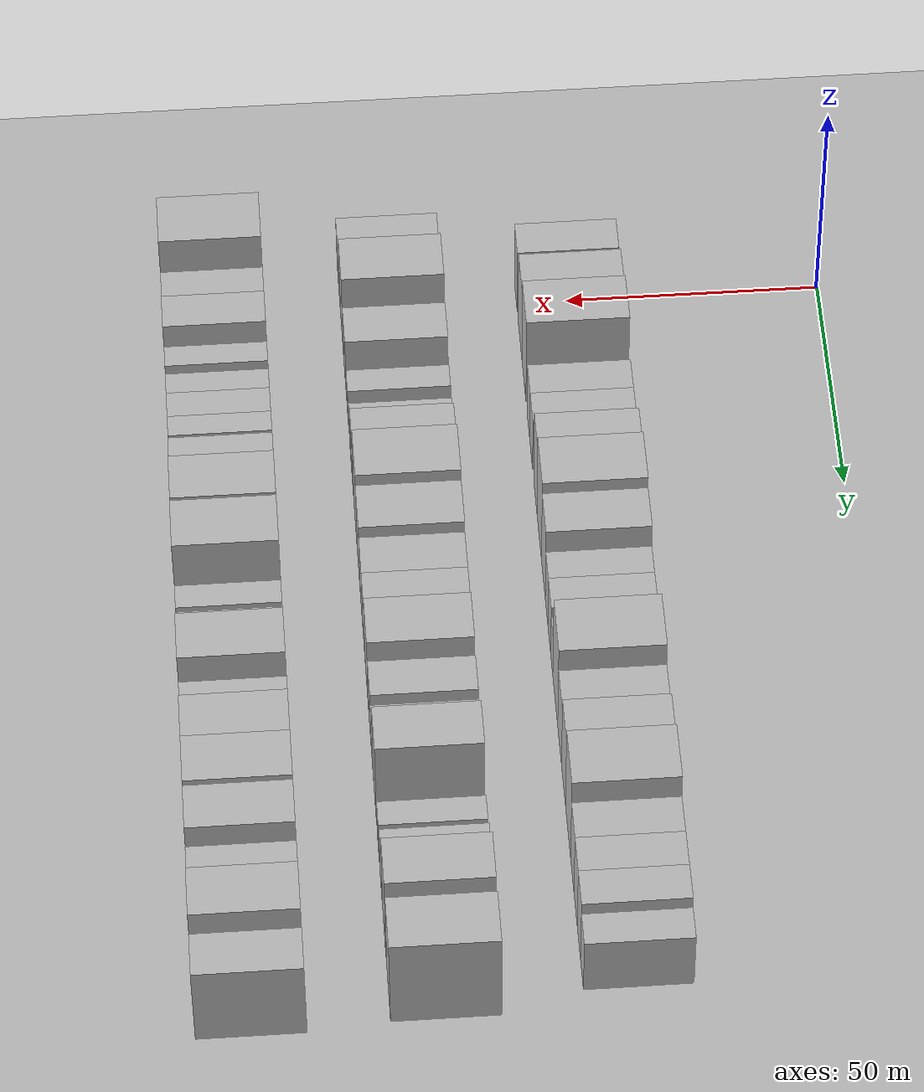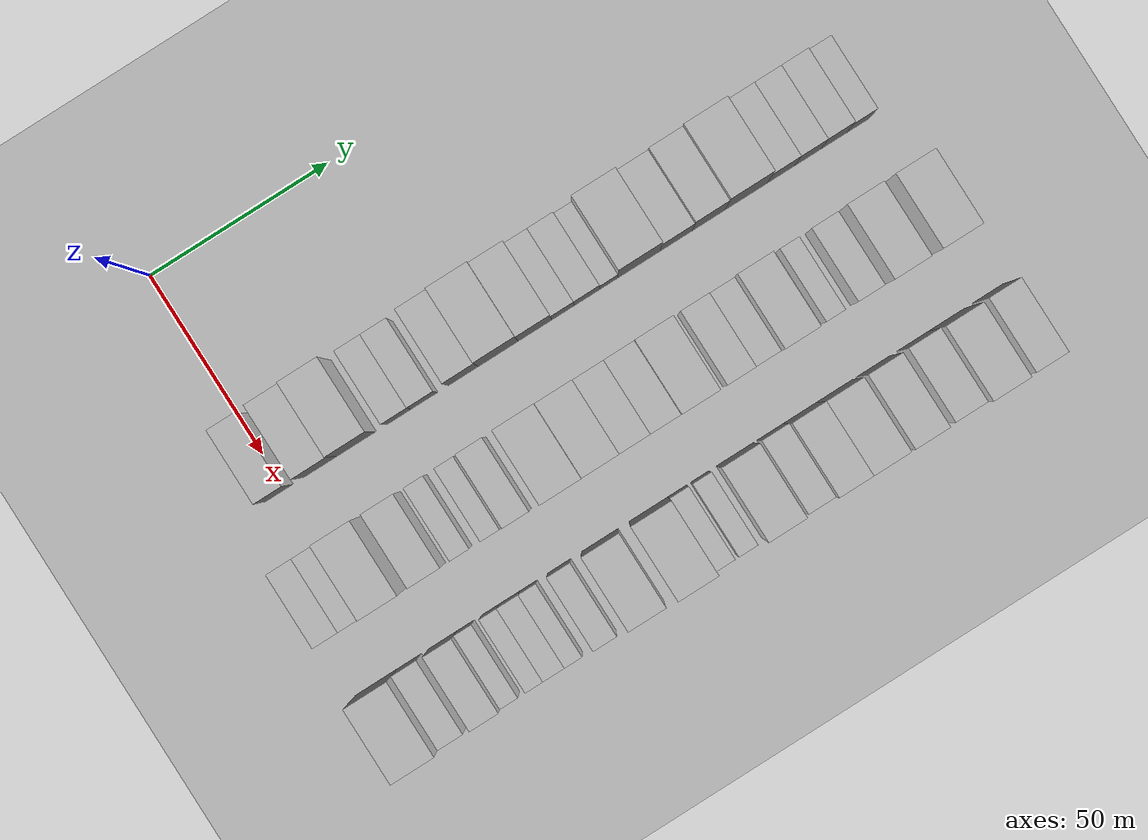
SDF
<sdf version="1.6">
 <world name="default">
  <include><name>ground_plane_1</name><uri>model://HANNAS_ground_plane</uri></include>
  <include>
   <name>ground_plane_2</name>
   <uri>model://HANNAS_ground_plane</uri>
   <pose>100 0 0  0 0 0</pose>
  </include>
  <model name="building_39">
   <static>1</static>
   <pose>50.0000 -1.3939 0 0.000000 0.000000 0.000000</pose>
   <link name="link">
    <pose>0 0 9.00 0 0 0</pose>
    <collision name="collision"><geometry><box><size>20.0000 7.6644 18.0000</size></box></geometry></collision>
    <visual name="visual">
     <cast_shadows>0</cast_shadows>
     <geometry><box><size>20.0000 7.6644 18.0000</size></box></geometry>
     <material>
      <script>
       <uri>model://HANNAS_wall/materials/scripts</uri>
       <uri>model://HANNAS_wall/materials/textures</uri>
       <name>vrc/HANNAS_wall</name>
      </script>
     </material>
    </visual>
   </link>
  </model>
  <model name="building_40">
   <static>1</static>
   <pose>50.0000 10.1830 0 0.000000 0.000000 0.000000</pose>
   <link name="link">
    <pose>0 0 10.50 0 0 0</pose>
    <collision name="collision"><geometry><box><size>20.0000 9.4892 21.0000</size></box></geometry></collision>
    <visual name="visual">
     <cast_shadows>0</cast_shadows>
     <geometry><box><size>20.0000 9.4892 21.0000</size></box></geometry>
     <material>
      <script>
       <uri>model://HANNAS_wall/materials/scripts</uri>
       <uri>model://HANNAS_wall/materials/textures</uri>
       <name>vrc/HANNAS_wall</name>
      </script>
     </material>
    </visual>
   </link>
  </model>
  <model name="building_41">
   <static>1</static>
   <pose>50.0000 20.3024 0 0.000000 0.000000 0.000000</pose>
   <link name="link">
    <pose>0 0 12.00 0 0 0</pose>
    <collision name="collision"><geometry><box><size>20.0000 10.7497 24.0000</size></box></geometry></collision>
    <visual name="visual">
     <cast_shadows>0</cast_shadows>
     <geometry><box><size>20.0000 10.7497 24.0000</size></box></geometry>
     <material>
      <script>
       <uri>model://HANNAS_wall/materials/scripts</uri>
       <uri>model://HANNAS_wall/materials/textures</uri>
       <name>vrc/HANNAS_wall</name>
      </script>
     </material>
    </visual>
   </link>
  </model>
  <model name="building_42">
   <static>1</static>
   <pose>50.0000 32.2145 0 0.000000 0.000000 0.000000</pose>
   <link name="link">
    <pose>0 0 7.50 0 0 0</pose>
    <collision name="collision"><geometry><box><size>20.0000 7.0744 15.0000</size></box></geometry></collision>
    <visual name="visual">
     <cast_shadows>0</cast_shadows>
     <geometry><box><size>20.0000 7.0744 15.0000</size></box></geometry>
     <material>
      <script>
       <uri>model://HANNAS_wall/materials/scripts</uri>
       <uri>model://HANNAS_wall/materials/textures</uri>
       <name>vrc/HANNAS_wall</name>
      </script>
     </material>
    </visual>
   </link>
  </model>
  <model name="building_43">
   <static>1</static>
   <pose>50.0000 39.3322 0 0.000000 0.000000 0.000000</pose>
   <link name="link">
    <pose>0 0 7.50 0 0 0</pose>
    <collision name="collision"><geometry><box><size>20.0000 7.1611 15.0000</size></box></geometry></collision>
    <visual name="visual">
     <cast_shadows>0</cast_shadows>
     <geometry><box><size>20.0000 7.1611 15.0000</size></box></geometry>
     <material>
      <script>
       <uri>model://HANNAS_wall/materials/scripts</uri>
       <uri>model://HANNAS_wall/materials/textures</uri>
       <name>vrc/HANNAS_wall</name>
      </script>
     </material>
    </visual>
   </link>
  </model>
  <model name="building_44">
   <static>1</static>
   <pose>50.0000 50.1427 0 0.000000 0.000000 0.000000</pose>
   <link name="link">
    <pose>0 0 10.50 0 0 0</pose>
    <collision name="collision"><geometry><box><size>20.0000 8.4600 21.0000</size></box></geometry></collision>
    <visual name="visual">
     <cast_shadows>0</cast_shadows>
     <geometry><box><size>20.0000 8.4600 21.0000</size></box></geometry>
     <material>
      <script>
       <uri>model://HANNAS_wall/materials/scripts</uri>
       <uri>model://HANNAS_wall/materials/textures</uri>
       <name>vrc/HANNAS_wall</name>
      </script>
     </material>
    </visual>
   </link>
  </model>
  <model name="building_45">
   <static>1</static>
   <pose>50.0000 59.9596 0 0.000000 0.000000 0.000000</pose>
   <link name="link">
    <pose>0 0 12.00 0 0 0</pose>
    <collision name="collision"><geometry><box><size>20.0000 11.1738 24.0000</size></box></geometry></collision>
    <visual name="visual">
     <cast_shadows>0</cast_shadows>
     <geometry><box><size>20.0000 11.1738 24.0000</size></box></geometry>
     <material>
      <script>
       <uri>model://HANNAS_wall/materials/scripts</uri>
       <uri>model://HANNAS_wall/materials/textures</uri>
       <name>vrc/HANNAS_wall</name>
      </script>
     </material>
    </visual>
   </link>
  </model>
  <model name="building_46">
   <static>1</static>
   <pose>50.0000 70.2104 0 0.000000 0.000000 0.000000</pose>
   <link name="link">
    <pose>0 0 10.50 0 0 0</pose>
    <collision name="collision"><geometry><box><size>20.0000 9.3278 21.0000</size></box></geometry></collision>
    <visual name="visual">
     <cast_shadows>0</cast_shadows>
     <geometry><box><size>20.0000 9.3278 21.0000</size></box></geometry>
     <material>
      <script>
       <uri>model://HANNAS_wall/materials/scripts</uri>
       <uri>model://HANNAS_wall/materials/textures</uri>
       <name>vrc/HANNAS_wall</name>
      </script>
     </material>
    </visual>
   </link>
  </model>
  <model name="building_47">
   <static>1</static>
   <pose>50.0000 77.9958 0 0.000000 0.000000 0.000000</pose>
   <link name="link">
    <pose>0 0 7.50 0 0 0</pose>
    <collision name="collision"><geometry><box><size>20.0000 6.2429 15.0000</size></box></geometry></collision>
    <visual name="visual">
     <cast_shadows>0</cast_shadows>
     <geometry><box><size>20.0000 6.2429 15.0000</size></box></geometry>
     <material>
      <script>
       <uri>model://HANNAS_wall/materials/scripts</uri>
       <uri>model://HANNAS_wall/materials/textures</uri>
       <name>vrc/HANNAS_wall</name>
      </script>
     </material>
    </visual>
   </link>
  </model>
  <model name="building_48">
   <static>1</static>
   <pose>50.0000 84.6650 0 0.000000 0.000000 0.000000</pose>
   <link name="link">
    <pose>0 0 7.50 0 0 0</pose>
    <collision name="collision"><geometry><box><size>20.0000 7.0955 15.0000</size></box></geometry></collision>
    <visual name="visual">
     <cast_shadows>0</cast_shadows>
     <geometry><box><size>20.0000 7.0955 15.0000</size></box></geometry>
     <material>
      <script>
       <uri>model://HANNAS_wall/materials/scripts</uri>
       <uri>model://HANNAS_wall/materials/textures</uri>
       <name>vrc/HANNAS_wall</name>
      </script>
     </material>
    </visual>
   </link>
  </model>
  <model name="building_49">
   <static>1</static>
   <pose>50.0000 90.7321 0 0.000000 0.000000 0.000000</pose>
   <link name="link">
    <pose>0 0 6.00 0 0 0</pose>
    <collision name="collision"><geometry><box><size>20.0000 5.0387 12.0000</size></box></geometry></collision>
    <visual name="visual">
     <cast_shadows>0</cast_shadows>
     <geometry><box><size>20.0000 5.0387 12.0000</size></box></geometry>
     <material>
      <script>
       <uri>model://HANNAS_wall/materials/scripts</uri>
       <uri>model://HANNAS_wall/materials/textures</uri>
       <name>vrc/HANNAS_wall</name>
      </script>
     </material>
    </visual>
   </link>
  </model>
  <model name="building_50">
   <static>1</static>
   <pose>50.0000 99.1785 0 0.000000 0.000000 0.000000</pose>
   <link name="link">
    <pose>0 0 12.00 0 0 0</pose>
    <collision name="collision"><geometry><box><size>20.0000 11.8541 24.0000</size></box></geometry></collision>
    <visual name="visual">
     <cast_shadows>0</cast_shadows>
     <geometry><box><size>20.0000 11.8541 24.0000</size></box></geometry>
     <material>
      <script>
       <uri>model://HANNAS_wall/materials/scripts</uri>
       <uri>model://HANNAS_wall/materials/textures</uri>
       <name>vrc/HANNAS_wall</name>
      </script>
     </material>
    </visual>
   </link>
  </model>
  <model name="building_51">
   <static>1</static>
   <pose>50.0000 109.5695 0 0.000000 0.000000 0.000000</pose>
   <link name="link">
    <pose>0 0 9.00 0 0 0</pose>
    <collision name="collision"><geometry><box><size>20.0000 8.9278 18.0000</size></box></geometry></collision>
    <visual name="visual">
     <cast_shadows>0</cast_shadows>
     <geometry><box><size>20.0000 8.9278 18.0000</size></box></geometry>
     <material>
      <script>
       <uri>model://HANNAS_wall/materials/scripts</uri>
       <uri>model://HANNAS_wall/materials/textures</uri>
       <name>vrc/HANNAS_wall</name>
      </script>
     </material>
    </visual>
   </link>
  </model>
  <model name="building_52">
   <static>1</static>
   <pose>50.0000 118.6475 0 0.000000 0.000000 0.000000</pose>
   <link name="link">
    <pose>0 0 10.50 0 0 0</pose>
    <collision name="collision"><geometry><box><size>20.0000 9.2281 21.0000</size></box></geometry></collision>
    <visual name="visual">
     <cast_shadows>0</cast_shadows>
     <geometry><box><size>20.0000 9.2281 21.0000</size></box></geometry>
     <material>
      <script>
       <uri>model://HANNAS_wall/materials/scripts</uri>
       <uri>model://HANNAS_wall/materials/textures</uri>
       <name>vrc/HANNAS_wall</name>
      </script>
     </material>
    </visual>
   </link>
  </model>
  <model name="building_53">
   <static>1</static>
   <pose>50.0000 129.1601 0 0.000000 0.000000 0.000000</pose>
   <link name="link">
    <pose>0 0 12.00 0 0 0</pose>
    <collision name="collision"><geometry><box><size>20.0000 11.7972 24.0000</size></box></geometry></collision>
    <visual name="visual">
     <cast_shadows>0</cast_shadows>
     <geometry><box><size>20.0000 11.7972 24.0000</size></box></geometry>
     <material>
      <script>
       <uri>model://HANNAS_wall/materials/scripts</uri>
       <uri>model://HANNAS_wall/materials/textures</uri>
       <name>vrc/HANNAS_wall</name>
      </script>
     </material>
    </visual>
   </link>
  </model>
  <model name="building_54">
   <static>1</static>
   <pose>50.0000 138.9152 0 0.000000 0.000000 0.000000</pose>
   <link name="link">
    <pose>0 0 9.00 0 0 0</pose>
    <collision name="collision"><geometry><box><size>20.0000 7.7130 18.0000</size></box></geometry></collision>
    <visual name="visual">
     <cast_shadows>0</cast_shadows>
     <geometry><box><size>20.0000 7.7130 18.0000</size></box></geometry>
     <material>
      <script>
       <uri>model://HANNAS_wall/materials/scripts</uri>
       <uri>model://HANNAS_wall/materials/textures</uri>
       <name>vrc/HANNAS_wall</name>
      </script>
     </material>
    </visual>
   </link>
  </model>
  <model name="building_55">
   <static>1</static>
   <pose>50.0000 146.4162 0 0.000000 0.000000 0.000000</pose>
   <link name="link">
    <pose>0 0 9.00 0 0 0</pose>
    <collision name="collision"><geometry><box><size>20.0000 7.2892 18.0000</size></box></geometry></collision>
    <visual name="visual">
     <cast_shadows>0</cast_shadows>
     <geometry><box><size>20.0000 7.2892 18.0000</size></box></geometry>
     <material>
      <script>
       <uri>model://HANNAS_wall/materials/scripts</uri>
       <uri>model://HANNAS_wall/materials/textures</uri>
       <name>vrc/HANNAS_wall</name>
      </script>
     </material>
    </visual>
   </link>
  </model>
  <model name="building_56">
   <static>1</static>
   <pose>50.0000 153.7322 0 0.000000 0.000000 0.000000</pose>
   <link name="link">
    <pose>0 0 9.00 0 0 0</pose>
    <collision name="collision"><geometry><box><size>20.0000 7.3428 18.0000</size></box></geometry></collision>
    <visual name="visual">
     <cast_shadows>0</cast_shadows>
     <geometry><box><size>20.0000 7.3428 18.0000</size></box></geometry>
     <material>
      <script>
       <uri>model://HANNAS_wall/materials/scripts</uri>
       <uri>model://HANNAS_wall/materials/textures</uri>
       <name>vrc/HANNAS_wall</name>
      </script>
     </material>
    </visual>
   </link>
  </model>
  <model name="building_57">
   <static>1</static>
   <pose>50.0000 160.6689 0 0.000000 0.000000 0.000000</pose>
   <link name="link">
    <pose>0 0 7.50 0 0 0</pose>
    <collision name="collision"><geometry><box><size>20.0000 6.5305 15.0000</size></box></geometry></collision>
    <visual name="visual">
     <cast_shadows>0</cast_shadows>
     <geometry><box><size>20.0000 6.5305 15.0000</size></box></geometry>
     <material>
      <script>
       <uri>model://HANNAS_wall/materials/scripts</uri>
       <uri>model://HANNAS_wall/materials/textures</uri>
       <name>vrc/HANNAS_wall</name>
      </script>
     </material>
    </visual>
   </link>
  </model>
  <model name="building_119">
   <static>1</static>
   <pose>85.0000 -8.5208 0 0.000000 0.000000 0.000000</pose>
   <link name="link">
    <pose>0 0 7.50 0 0 0</pose>
    <collision name="collision"><geometry><box><size>20.0000 6.8696 15.0000</size></box></geometry></collision>
    <visual name="visual">
     <cast_shadows>0</cast_shadows>
     <geometry><box><size>20.0000 6.8696 15.0000</size></box></geometry>
     <material>
      <script>
       <uri>model://HANNAS_wall/materials/scripts</uri>
       <uri>model://HANNAS_wall/materials/textures</uri>
       <name>vrc/HANNAS_wall</name>
      </script>
     </material>
    </visual>
   </link>
  </model>
  <model name="building_120">
   <static>1</static>
   <pose>85.0000 -1.7796 0 0.000000 0.000000 0.000000</pose>
   <link name="link">
    <pose>0 0 7.50 0 0 0</pose>
    <collision name="collision"><geometry><box><size>20.0000 6.6127 15.0000</size></box></geometry></collision>
    <visual name="visual">
     <cast_shadows>0</cast_shadows>
     <geometry><box><size>20.0000 6.6127 15.0000</size></box></geometry>
     <material>
      <script>
       <uri>model://HANNAS_wall/materials/scripts</uri>
       <uri>model://HANNAS_wall/materials/textures</uri>
       <name>vrc/HANNAS_wall</name>
      </script>
     </material>
    </visual>
   </link>
  </model>
  <model name="building_121">
   <static>1</static>
   <pose>85.0000 6.8212 0 0.000000 0.000000 0.000000</pose>
   <link name="link">
    <pose>0 0 12.00 0 0 0</pose>
    <collision name="collision"><geometry><box><size>20.0000 10.5889 24.0000</size></box></geometry></collision>
    <visual name="visual">
     <cast_shadows>0</cast_shadows>
     <geometry><box><size>20.0000 10.5889 24.0000</size></box></geometry>
     <material>
      <script>
       <uri>model://HANNAS_wall/materials/scripts</uri>
       <uri>model://HANNAS_wall/materials/textures</uri>
       <name>vrc/HANNAS_wall</name>
      </script>
     </material>
    </visual>
   </link>
  </model>
  <model name="building_122">
   <static>1</static>
   <pose>85.0000 18.5259 0 0.000000 0.000000 0.000000</pose>
   <link name="link">
    <pose>0 0 9.00 0 0 0</pose>
    <collision name="collision"><geometry><box><size>20.0000 8.8205 18.0000</size></box></geometry></collision>
    <visual name="visual">
     <cast_shadows>0</cast_shadows>
     <geometry><box><size>20.0000 8.8205 18.0000</size></box></geometry>
     <material>
      <script>
       <uri>model://HANNAS_wall/materials/scripts</uri>
       <uri>model://HANNAS_wall/materials/textures</uri>
       <name>vrc/HANNAS_wall</name>
      </script>
     </material>
    </visual>
   </link>
  </model>
  <model name="building_123">
   <static>1</static>
   <pose>85.0000 27.6398 0 0.000000 0.000000 0.000000</pose>
   <link name="link">
    <pose>0 0 6.00 0 0 0</pose>
    <collision name="collision"><geometry><box><size>20.0000 5.4074 12.0000</size></box></geometry></collision>
    <visual name="visual">
     <cast_shadows>0</cast_shadows>
     <geometry><box><size>20.0000 5.4074 12.0000</size></box></geometry>
     <material>
      <script>
       <uri>model://HANNAS_wall/materials/scripts</uri>
       <uri>model://HANNAS_wall/materials/textures</uri>
       <name>vrc/HANNAS_wall</name>
      </script>
     </material>
    </visual>
   </link>
  </model>
  <model name="building_124">
   <static>1</static>
   <pose>85.0000 35.9796 0 0.000000 0.000000 0.000000</pose>
   <link name="link">
    <pose>0 0 6.00 0 0 0</pose>
    <collision name="collision"><geometry><box><size>20.0000 5.2722 12.0000</size></box></geometry></collision>
    <visual name="visual">
     <cast_shadows>0</cast_shadows>
     <geometry><box><size>20.0000 5.2722 12.0000</size></box></geometry>
     <material>
      <script>
       <uri>model://HANNAS_wall/materials/scripts</uri>
       <uri>model://HANNAS_wall/materials/textures</uri>
       <name>vrc/HANNAS_wall</name>
      </script>
     </material>
    </visual>
   </link>
  </model>
  <model name="building_125">
   <static>1</static>
   <pose>85.0000 43.2569 0 0.000000 0.000000 0.000000</pose>
   <link name="link">
    <pose>0 0 9.00 0 0 0</pose>
    <collision name="collision"><geometry><box><size>20.0000 7.2823 18.0000</size></box></geometry></collision>
    <visual name="visual">
     <cast_shadows>0</cast_shadows>
     <geometry><box><size>20.0000 7.2823 18.0000</size></box></geometry>
     <material>
      <script>
       <uri>model://HANNAS_wall/materials/scripts</uri>
       <uri>model://HANNAS_wall/materials/textures</uri>
       <name>vrc/HANNAS_wall</name>
      </script>
     </material>
    </visual>
   </link>
  </model>
  <model name="building_126">
   <static>1</static>
   <pose>85.0000 55.5055 0 0.000000 0.000000 0.000000</pose>
   <link name="link">
    <pose>0 0 12.00 0 0 0</pose>
    <collision name="collision"><geometry><box><size>20.0000 11.2148 24.0000</size></box></geometry></collision>
    <visual name="visual">
     <cast_shadows>0</cast_shadows>
     <geometry><box><size>20.0000 11.2148 24.0000</size></box></geometry>
     <material>
      <script>
       <uri>model://HANNAS_wall/materials/scripts</uri>
       <uri>model://HANNAS_wall/materials/textures</uri>
       <name>vrc/HANNAS_wall</name>
      </script>
     </material>
    </visual>
   </link>
  </model>
  <model name="building_127">
   <static>1</static>
   <pose>85.0000 66.1872 0 0.000000 0.000000 0.000000</pose>
   <link name="link">
    <pose>0 0 10.50 0 0 0</pose>
    <collision name="collision"><geometry><box><size>20.0000 10.1487 21.0000</size></box></geometry></collision>
    <visual name="visual">
     <cast_shadows>0</cast_shadows>
     <geometry><box><size>20.0000 10.1487 21.0000</size></box></geometry>
     <material>
      <script>
       <uri>model://HANNAS_wall/materials/scripts</uri>
       <uri>model://HANNAS_wall/materials/textures</uri>
       <name>vrc/HANNAS_wall</name>
      </script>
     </material>
    </visual>
   </link>
  </model>
  <model name="building_128">
   <static>1</static>
   <pose>85.0000 75.4717 0 0.000000 0.000000 0.000000</pose>
   <link name="link">
    <pose>0 0 9.00 0 0 0</pose>
    <collision name="collision"><geometry><box><size>20.0000 8.4203 18.0000</size></box></geometry></collision>
    <visual name="visual">
     <cast_shadows>0</cast_shadows>
     <geometry><box><size>20.0000 8.4203 18.0000</size></box></geometry>
     <material>
      <script>
       <uri>model://HANNAS_wall/materials/scripts</uri>
       <uri>model://HANNAS_wall/materials/textures</uri>
       <name>vrc/HANNAS_wall</name>
      </script>
     </material>
    </visual>
   </link>
  </model>
  <model name="building_129">
   <static>1</static>
   <pose>85.0000 83.8547 0 0.000000 0.000000 0.000000</pose>
   <link name="link">
    <pose>0 0 9.00 0 0 0</pose>
    <collision name="collision"><geometry><box><size>20.0000 8.3458 18.0000</size></box></geometry></collision>
    <visual name="visual">
     <cast_shadows>0</cast_shadows>
     <geometry><box><size>20.0000 8.3458 18.0000</size></box></geometry>
     <material>
      <script>
       <uri>model://HANNAS_wall/materials/scripts</uri>
       <uri>model://HANNAS_wall/materials/textures</uri>
       <name>vrc/HANNAS_wall</name>
      </script>
     </material>
    </visual>
   </link>
  </model>
  <model name="building_130">
   <static>1</static>
   <pose>85.0000 93.2520 0 0.000000 0.000000 0.000000</pose>
   <link name="link">
    <pose>0 0 10.50 0 0 0</pose>
    <collision name="collision"><geometry><box><size>20.0000 10.4488 21.0000</size></box></geometry></collision>
    <visual name="visual">
     <cast_shadows>0</cast_shadows>
     <geometry><box><size>20.0000 10.4488 21.0000</size></box></geometry>
     <material>
      <script>
       <uri>model://HANNAS_wall/materials/scripts</uri>
       <uri>model://HANNAS_wall/materials/textures</uri>
       <name>vrc/HANNAS_wall</name>
      </script>
     </material>
    </visual>
   </link>
  </model>
  <model name="building_131">
   <static>1</static>
   <pose>85.0000 104.4066 0 0.000000 0.000000 0.000000</pose>
   <link name="link">
    <pose>0 0 9.00 0 0 0</pose>
    <collision name="collision"><geometry><box><size>20.0000 7.8604 18.0000</size></box></geometry></collision>
    <visual name="visual">
     <cast_shadows>0</cast_shadows>
     <geometry><box><size>20.0000 7.8604 18.0000</size></box></geometry>
     <material>
      <script>
       <uri>model://HANNAS_wall/materials/scripts</uri>
       <uri>model://HANNAS_wall/materials/textures</uri>
       <name>vrc/HANNAS_wall</name>
      </script>
     </material>
    </visual>
   </link>
  </model>
  <model name="building_132">
   <static>1</static>
   <pose>85.0000 111.8627 0 0.000000 0.000000 0.000000</pose>
   <link name="link">
    <pose>0 0 7.50 0 0 0</pose>
    <collision name="collision"><geometry><box><size>20.0000 7.0519 15.0000</size></box></geometry></collision>
    <visual name="visual">
     <cast_shadows>0</cast_shadows>
     <geometry><box><size>20.0000 7.0519 15.0000</size></box></geometry>
     <material>
      <script>
       <uri>model://HANNAS_wall/materials/scripts</uri>
       <uri>model://HANNAS_wall/materials/textures</uri>
       <name>vrc/HANNAS_wall</name>
      </script>
     </material>
    </visual>
   </link>
  </model>
  <model name="building_133">
   <static>1</static>
   <pose>85.0000 120.1982 0 0.000000 0.000000 0.000000</pose>
   <link name="link">
    <pose>0 0 12.00 0 0 0</pose>
    <collision name="collision"><geometry><box><size>20.0000 9.6190 24.0000</size></box></geometry></collision>
    <visual name="visual">
     <cast_shadows>0</cast_shadows>
     <geometry><box><size>20.0000 9.6190 24.0000</size></box></geometry>
     <material>
      <script>
       <uri>model://HANNAS_wall/materials/scripts</uri>
       <uri>model://HANNAS_wall/materials/textures</uri>
       <name>vrc/HANNAS_wall</name>
      </script>
     </material>
    </visual>
   </link>
  </model>
  <model name="building_134">
   <static>1</static>
   <pose>85.0000 130.6579 0 0.000000 0.000000 0.000000</pose>
   <link name="link">
    <pose>0 0 6.00 0 0 0</pose>
    <collision name="collision"><geometry><box><size>20.0000 5.3004 12.0000</size></box></geometry></collision>
    <visual name="visual">
     <cast_shadows>0</cast_shadows>
     <geometry><box><size>20.0000 5.3004 12.0000</size></box></geometry>
     <material>
      <script>
       <uri>model://HANNAS_wall/materials/scripts</uri>
       <uri>model://HANNAS_wall/materials/textures</uri>
       <name>vrc/HANNAS_wall</name>
      </script>
     </material>
    </visual>
   </link>
  </model>
  <model name="building_135">
   <static>1</static>
   <pose>85.0000 139.9618 0 0.000000 0.000000 0.000000</pose>
   <link name="link">
    <pose>0 0 7.50 0 0 0</pose>
    <collision name="collision"><geometry><box><size>20.0000 7.3074 15.0000</size></box></geometry></collision>
    <visual name="visual">
     <cast_shadows>0</cast_shadows>
     <geometry><box><size>20.0000 7.3074 15.0000</size></box></geometry>
     <material>
      <script>
       <uri>model://HANNAS_wall/materials/scripts</uri>
       <uri>model://HANNAS_wall/materials/textures</uri>
       <name>vrc/HANNAS_wall</name>
      </script>
     </material>
    </visual>
   </link>
  </model>
  <model name="building_136">
   <static>1</static>
   <pose>85.0000 149.5740 0 0.000000 0.000000 0.000000</pose>
   <link name="link">
    <pose>0 0 12.00 0 0 0</pose>
    <collision name="collision"><geometry><box><size>20.0000 9.9170 24.0000</size></box></geometry></collision>
    <visual name="visual">
     <cast_shadows>0</cast_shadows>
     <geometry><box><size>20.0000 9.9170 24.0000</size></box></geometry>
     <material>
      <script>
       <uri>model://HANNAS_wall/materials/scripts</uri>
       <uri>model://HANNAS_wall/materials/textures</uri>
       <name>vrc/HANNAS_wall</name>
      </script>
     </material>
    </visual>
   </link>
  </model>
  <model name="building_137">
   <static>1</static>
   <pose>85.0000 162.9010 0 0.000000 0.000000 0.000000</pose>
   <link name="link">
    <pose>0 0 12.00 0 0 0</pose>
    <collision name="collision"><geometry><box><size>20.0000 10.7370 24.0000</size></box></geometry></collision>
    <visual name="visual">
     <cast_shadows>0</cast_shadows>
     <geometry><box><size>20.0000 10.7370 24.0000</size></box></geometry>
     <material>
      <script>
       <uri>model://HANNAS_wall/materials/scripts</uri>
       <uri>model://HANNAS_wall/materials/textures</uri>
       <name>vrc/HANNAS_wall</name>
      </script>
     </material>
    </visual>
   </link>
  </model>
  <model name="building_192">
   <static>1</static>
   <pose>120.0000 -6.0105 0 0.000000 0.000000 0.000000</pose>
   <link name="link">
    <pose>0 0 12.00 0 0 0</pose>
    <collision name="collision"><geometry><box><size>20.0000 11.6139 24.0000</size></box></geometry></collision>
    <visual name="visual">
     <cast_shadows>0</cast_shadows>
     <geometry><box><size>20.0000 11.6139 24.0000</size></box></geometry>
     <material>
      <script>
       <uri>model://HANNAS_wall/materials/scripts</uri>
       <uri>model://HANNAS_wall/materials/textures</uri>
       <name>vrc/HANNAS_wall</name>
      </script>
     </material>
    </visual>
   </link>
  </model>
  <model name="building_193">
   <static>1</static>
   <pose>120.0000 3.2212 0 0.000000 0.000000 0.000000</pose>
   <link name="link">
    <pose>0 0 7.50 0 0 0</pose>
    <collision name="collision"><geometry><box><size>20.0000 6.8496 15.0000</size></box></geometry></collision>
    <visual name="visual">
     <cast_shadows>0</cast_shadows>
     <geometry><box><size>20.0000 6.8496 15.0000</size></box></geometry>
     <material>
      <script>
       <uri>model://HANNAS_wall/materials/scripts</uri>
       <uri>model://HANNAS_wall/materials/textures</uri>
       <name>vrc/HANNAS_wall</name>
      </script>
     </material>
    </visual>
   </link>
  </model>
  <model name="building_194">
   <static>1</static>
   <pose>120.0000 12.5648 0 0.000000 0.000000 0.000000</pose>
   <link name="link">
    <pose>0 0 9.00 0 0 0</pose>
    <collision name="collision"><geometry><box><size>20.0000 7.8376 18.0000</size></box></geometry></collision>
    <visual name="visual">
     <cast_shadows>0</cast_shadows>
     <geometry><box><size>20.0000 7.8376 18.0000</size></box></geometry>
     <material>
      <script>
       <uri>model://HANNAS_wall/materials/scripts</uri>
       <uri>model://HANNAS_wall/materials/textures</uri>
       <name>vrc/HANNAS_wall</name>
      </script>
     </material>
    </visual>
   </link>
  </model>
  <model name="building_195">
   <static>1</static>
   <pose>120.0000 18.9459 0 0.000000 0.000000 0.000000</pose>
   <link name="link">
    <pose>0 0 6.00 0 0 0</pose>
    <collision name="collision"><geometry><box><size>20.0000 4.9245 12.0000</size></box></geometry></collision>
    <visual name="visual">
     <cast_shadows>0</cast_shadows>
     <geometry><box><size>20.0000 4.9245 12.0000</size></box></geometry>
     <material>
      <script>
       <uri>model://HANNAS_wall/materials/scripts</uri>
       <uri>model://HANNAS_wall/materials/textures</uri>
       <name>vrc/HANNAS_wall</name>
      </script>
     </material>
    </visual>
   </link>
  </model>
  <model name="building_196">
   <static>1</static>
   <pose>120.0000 25.8182 0 0.000000 0.000000 0.000000</pose>
   <link name="link">
    <pose>0 0 6.00 0 0 0</pose>
    <collision name="collision"><geometry><box><size>20.0000 4.8202 12.0000</size></box></geometry></collision>
    <visual name="visual">
     <cast_shadows>0</cast_shadows>
     <geometry><box><size>20.0000 4.8202 12.0000</size></box></geometry>
     <material>
      <script>
       <uri>model://HANNAS_wall/materials/scripts</uri>
       <uri>model://HANNAS_wall/materials/textures</uri>
       <name>vrc/HANNAS_wall</name>
      </script>
     </material>
    </visual>
   </link>
  </model>
  <model name="building_197">
   <static>1</static>
   <pose>120.0000 31.1744 0 0.000000 0.000000 0.000000</pose>
   <link name="link">
    <pose>0 0 6.00 0 0 0</pose>
    <collision name="collision"><geometry><box><size>20.0000 5.8922 12.0000</size></box></geometry></collision>
    <visual name="visual">
     <cast_shadows>0</cast_shadows>
     <geometry><box><size>20.0000 5.8922 12.0000</size></box></geometry>
     <material>
      <script>
       <uri>model://HANNAS_wall/materials/scripts</uri>
       <uri>model://HANNAS_wall/materials/textures</uri>
       <name>vrc/HANNAS_wall</name>
      </script>
     </material>
    </visual>
   </link>
  </model>
  <model name="building_198">
   <static>1</static>
   <pose>120.0000 36.5406 0 0.000000 0.000000 0.000000</pose>
   <link name="link">
    <pose>0 0 6.00 0 0 0</pose>
    <collision name="collision"><geometry><box><size>20.0000 4.8403 12.0000</size></box></geometry></collision>
    <visual name="visual">
     <cast_shadows>0</cast_shadows>
     <geometry><box><size>20.0000 4.8403 12.0000</size></box></geometry>
     <material>
      <script>
       <uri>model://HANNAS_wall/materials/scripts</uri>
       <uri>model://HANNAS_wall/materials/textures</uri>
       <name>vrc/HANNAS_wall</name>
      </script>
     </material>
    </visual>
   </link>
  </model>
  <model name="building_199">
   <static>1</static>
   <pose>120.0000 45.1717 0 0.000000 0.000000 0.000000</pose>
   <link name="link">
    <pose>0 0 7.50 0 0 0</pose>
    <collision name="collision"><geometry><box><size>20.0000 6.4218 15.0000</size></box></geometry></collision>
    <visual name="visual">
     <cast_shadows>0</cast_shadows>
     <geometry><box><size>20.0000 6.4218 15.0000</size></box></geometry>
     <material>
      <script>
       <uri>model://HANNAS_wall/materials/scripts</uri>
       <uri>model://HANNAS_wall/materials/textures</uri>
       <name>vrc/HANNAS_wall</name>
      </script>
     </material>
    </visual>
   </link>
  </model>
  <model name="building_200">
   <static>1</static>
   <pose>120.0000 56.5029 0 0.000000 0.000000 0.000000</pose>
   <link name="link">
    <pose>0 0 10.50 0 0 0</pose>
    <collision name="collision"><geometry><box><size>20.0000 10.2407 21.0000</size></box></geometry></collision>
    <visual name="visual">
     <cast_shadows>0</cast_shadows>
     <geometry><box><size>20.0000 10.2407 21.0000</size></box></geometry>
     <material>
      <script>
       <uri>model://HANNAS_wall/materials/scripts</uri>
       <uri>model://HANNAS_wall/materials/textures</uri>
       <name>vrc/HANNAS_wall</name>
      </script>
     </material>
    </visual>
   </link>
  </model>
  <model name="building_201">
   <static>1</static>
   <pose>120.0000 70.0821 0 0.000000 0.000000 0.000000</pose>
   <link name="link">
    <pose>0 0 12.00 0 0 0</pose>
    <collision name="collision"><geometry><box><size>20.0000 10.9176 24.0000</size></box></geometry></collision>
    <visual name="visual">
     <cast_shadows>0</cast_shadows>
     <geometry><box><size>20.0000 10.9176 24.0000</size></box></geometry>
     <material>
      <script>
       <uri>model://HANNAS_wall/materials/scripts</uri>
       <uri>model://HANNAS_wall/materials/textures</uri>
       <name>vrc/HANNAS_wall</name>
      </script>
     </material>
    </visual>
   </link>
  </model>
  <model name="building_202">
   <static>1</static>
   <pose>120.0000 78.1884 0 0.000000 0.000000 0.000000</pose>
   <link name="link">
    <pose>0 0 6.00 0 0 0</pose>
    <collision name="collision"><geometry><box><size>20.0000 5.2950 12.0000</size></box></geometry></collision>
    <visual name="visual">
     <cast_shadows>0</cast_shadows>
     <geometry><box><size>20.0000 5.2950 12.0000</size></box></geometry>
     <material>
      <script>
       <uri>model://HANNAS_wall/materials/scripts</uri>
       <uri>model://HANNAS_wall/materials/textures</uri>
       <name>vrc/HANNAS_wall</name>
      </script>
     </material>
    </visual>
   </link>
  </model>
  <model name="building_203">
   <static>1</static>
   <pose>120.0000 84.4561 0 0.000000 0.000000 0.000000</pose>
   <link name="link">
    <pose>0 0 6.00 0 0 0</pose>
    <collision name="collision"><geometry><box><size>20.0000 5.2405 12.0000</size></box></geometry></collision>
    <visual name="visual">
     <cast_shadows>0</cast_shadows>
     <geometry><box><size>20.0000 5.2405 12.0000</size></box></geometry>
     <material>
      <script>
       <uri>model://HANNAS_wall/materials/scripts</uri>
       <uri>model://HANNAS_wall/materials/textures</uri>
       <name>vrc/HANNAS_wall</name>
      </script>
     </material>
    </visual>
   </link>
  </model>
  <model name="building_204">
   <static>1</static>
   <pose>120.0000 94.2750 0 0.000000 0.000000 0.000000</pose>
   <link name="link">
    <pose>0 0 10.50 0 0 0</pose>
    <collision name="collision"><geometry><box><size>20.0000 10.3973 21.0000</size></box></geometry></collision>
    <visual name="visual">
     <cast_shadows>0</cast_shadows>
     <geometry><box><size>20.0000 10.3973 21.0000</size></box></geometry>
     <material>
      <script>
       <uri>model://HANNAS_wall/materials/scripts</uri>
       <uri>model://HANNAS_wall/materials/textures</uri>
       <name>vrc/HANNAS_wall</name>
      </script>
     </material>
    </visual>
   </link>
  </model>
  <model name="building_205">
   <static>1</static>
   <pose>120.0000 104.2234 0 0.000000 0.000000 0.000000</pose>
   <link name="link">
    <pose>0 0 7.50 0 0 0</pose>
    <collision name="collision"><geometry><box><size>20.0000 7.4995 15.0000</size></box></geometry></collision>
    <visual name="visual">
     <cast_shadows>0</cast_shadows>
     <geometry><box><size>20.0000 7.4995 15.0000</size></box></geometry>
     <material>
      <script>
       <uri>model://HANNAS_wall/materials/scripts</uri>
       <uri>model://HANNAS_wall/materials/textures</uri>
       <name>vrc/HANNAS_wall</name>
      </script>
     </material>
    </visual>
   </link>
  </model>
  <model name="building_206">
   <static>1</static>
   <pose>120.0000 112.6053 0 0.000000 0.000000 0.000000</pose>
   <link name="link">
    <pose>0 0 10.50 0 0 0</pose>
    <collision name="collision"><geometry><box><size>20.0000 9.2642 21.0000</size></box></geometry></collision>
    <visual name="visual">
     <cast_shadows>0</cast_shadows>
     <geometry><box><size>20.0000 9.2642 21.0000</size></box></geometry>
     <material>
      <script>
       <uri>model://HANNAS_wall/materials/scripts</uri>
       <uri>model://HANNAS_wall/materials/textures</uri>
       <name>vrc/HANNAS_wall</name>
      </script>
     </material>
    </visual>
   </link>
  </model>
  <model name="building_207">
   <static>1</static>
   <pose>120.0000 122.3021 0 0.000000 0.000000 0.000000</pose>
   <link name="link">
    <pose>0 0 10.50 0 0 0</pose>
    <collision name="collision"><geometry><box><size>20.0000 10.1295 21.0000</size></box></geometry></collision>
    <visual name="visual">
     <cast_shadows>0</cast_shadows>
     <geometry><box><size>20.0000 10.1295 21.0000</size></box></geometry>
     <material>
      <script>
       <uri>model://HANNAS_wall/materials/scripts</uri>
       <uri>model://HANNAS_wall/materials/textures</uri>
       <name>vrc/HANNAS_wall</name>
      </script>
     </material>
    </visual>
   </link>
  </model>
  <model name="building_208">
   <static>1</static>
   <pose>120.0000 133.0750 0 0.000000 0.000000 0.000000</pose>
   <link name="link">
    <pose>0 0 10.50 0 0 0</pose>
    <collision name="collision"><geometry><box><size>20.0000 9.4162 21.0000</size></box></geometry></collision>
    <visual name="visual">
     <cast_shadows>0</cast_shadows>
     <geometry><box><size>20.0000 9.4162 21.0000</size></box></geometry>
     <material>
      <script>
       <uri>model://HANNAS_wall/materials/scripts</uri>
       <uri>model://HANNAS_wall/materials/textures</uri>
       <name>vrc/HANNAS_wall</name>
      </script>
     </material>
    </visual>
   </link>
  </model>
  <model name="building_209">
   <static>1</static>
   <pose>120.0000 144.1733 0 0.000000 0.000000 0.000000</pose>
   <link name="link">
    <pose>0 0 9.00 0 0 0</pose>
    <collision name="collision"><geometry><box><size>20.0000 8.7805 18.0000</size></box></geometry></collision>
    <visual name="visual">
     <cast_shadows>0</cast_shadows>
     <geometry><box><size>20.0000 8.7805 18.0000</size></box></geometry>
     <material>
      <script>
       <uri>model://HANNAS_wall/materials/scripts</uri>
       <uri>model://HANNAS_wall/materials/textures</uri>
       <name>vrc/HANNAS_wall</name>
      </script>
     </material>
    </visual>
   </link>
  </model>
  <model name="building_210">
   <static>1</static>
   <pose>120.0000 153.6717 0 0.000000 0.000000 0.000000</pose>
   <link name="link">
    <pose>0 0 12.00 0 0 0</pose>
    <collision name="collision"><geometry><box><size>20.0000 10.2162 24.0000</size></box></geometry></collision>
    <visual name="visual">
     <cast_shadows>0</cast_shadows>
     <geometry><box><size>20.0000 10.2162 24.0000</size></box></geometry>
     <material>
      <script>
       <uri>model://HANNAS_wall/materials/scripts</uri>
       <uri>model://HANNAS_wall/materials/textures</uri>
       <name>vrc/HANNAS_wall</name>
      </script>
     </material>
    </visual>
   </link>
  </model>
  <model name="building_211">
   <static>1</static>
   <pose>120.0000 165.1581 0 0.000000 0.000000 0.000000</pose>
   <link name="link">
    <pose>0 0 10.50 0 0 0</pose>
    <collision name="collision"><geometry><box><size>20.0000 8.7565 21.0000</size></box></geometry></collision>
    <visual name="visual">
     <cast_shadows>0</cast_shadows>
     <geometry><box><size>20.0000 8.7565 21.0000</size></box></geometry>
     <material>
      <script>
       <uri>model://HANNAS_wall/materials/scripts</uri>
       <uri>model://HANNAS_wall/materials/textures</uri>
       <name>vrc/HANNAS_wall</name>
      </script>
     </material>
    </visual>
   </link>
  </model>
 </world>
</sdf>
